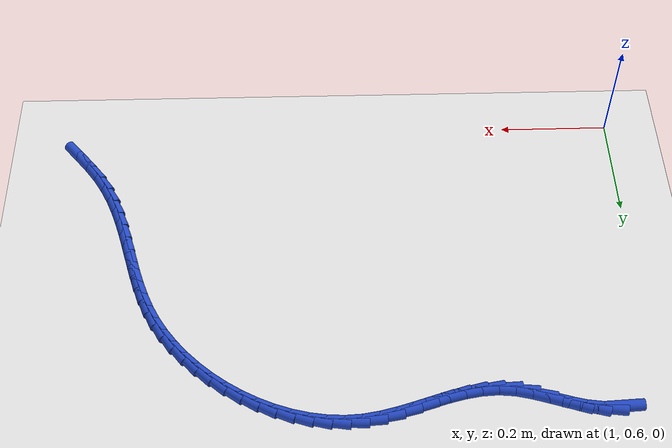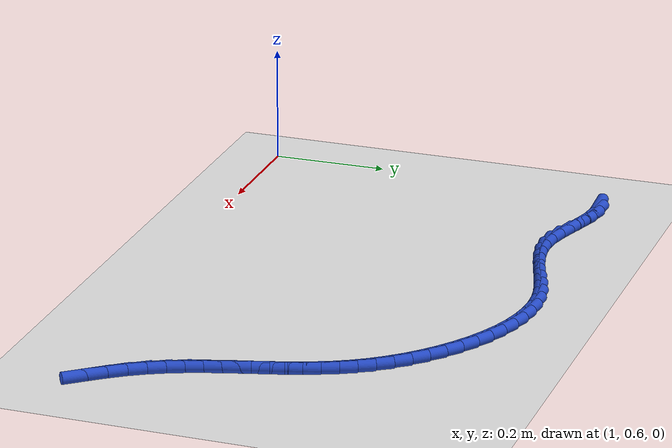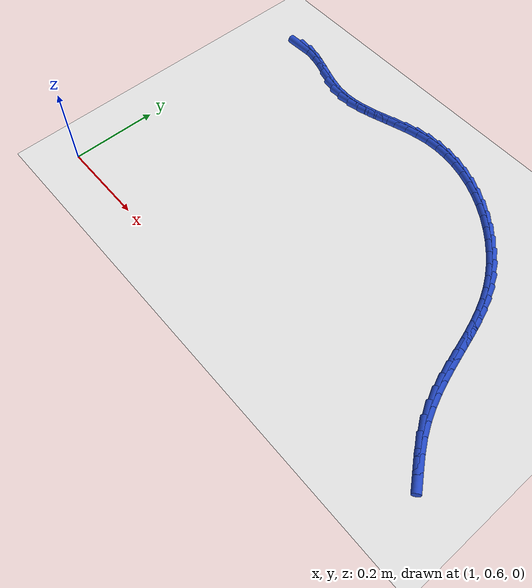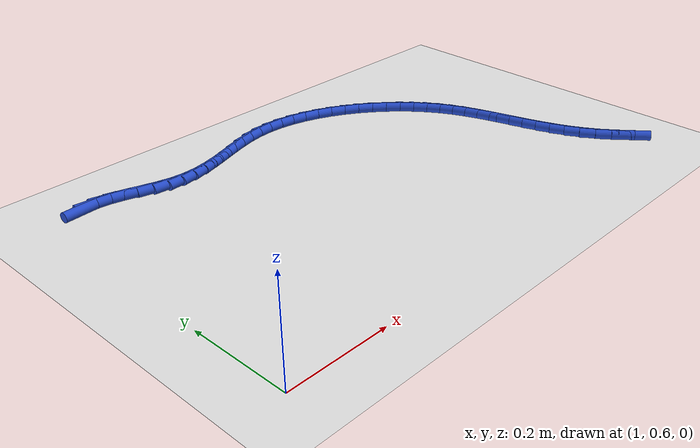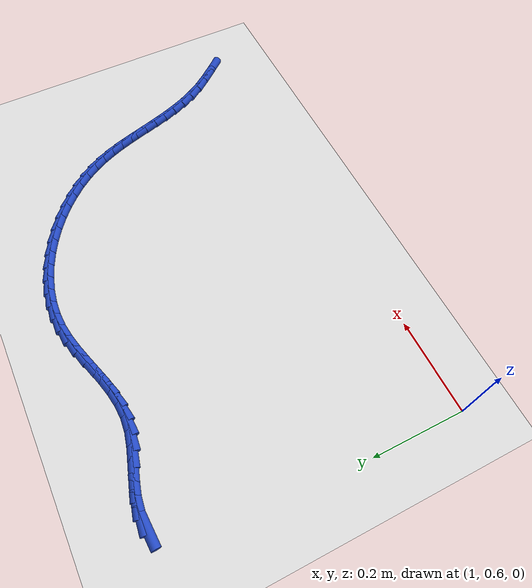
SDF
<sdf version="1.6">
 <world name="default">
  <model name="ground_plane">
   <static>1</static>
   <link name="link">
    <collision name="collision">
     <geometry><plane><normal>0 0 1</normal><size>100 100</size></plane></geometry>
     <surface><friction><ode><mu>100</mu><mu2>50</mu2></ode></friction></surface>
    </collision>
    <visual name="visual">
     <cast_shadows>0</cast_shadows>
     <geometry><plane><normal>0 0 1</normal><size>100 100</size></plane></geometry>
     <material>
      <script><uri>file://media/materials/scripts/gazebo.material</uri><name>Gazebo/WhiteGlow</name></script>
     </material>
    </visual>
   </link>
  </model>
  <model name="line">
   <link name="link_61">
    <pose>1.0715488757039915 1.217589665603973 0.01 0 1.57 0.05435777274545825</pose>
    <collision name="collision">
     <geometry><cylinder><radius>0.01</radius><length>0.08</length></cylinder></geometry>
    </collision>
    <visual name="visual">
     <material>
      <script><name>Gazebo/Blue</name><uri>file://media/materials/scripts/gazebo.material</uri></script>
     </material>
     <geometry><cylinder><radius>0.01</radius><length>0.08</length></cylinder></geometry>
    </visual>
   </link>
   <link name="link_62">
    <pose>1.0986426525846236 1.2190638752387835 0.01 0 1.57 -0.13552404900785117</pose>
    <collision name="collision">
     <geometry><cylinder><radius>0.01</radius><length>0.08</length></cylinder></geometry>
    </collision>
    <visual name="visual">
     <material>
      <script><name>Gazebo/Blue</name><uri>file://media/materials/scripts/gazebo.material</uri></script>
     </material>
     <geometry><cylinder><radius>0.01</radius><length>0.08</length></cylinder></geometry>
    </visual>
   </link>
   <link name="link_63">
    <pose>1.1262008687773615 1.2153060395453452 0.01 0 1.57 -0.25827537090885283</pose>
    <collision name="collision">
     <geometry><cylinder><radius>0.01</radius><length>0.08</length></cylinder></geometry>
    </collision>
    <visual name="visual">
     <material>
      <script><name>Gazebo/Blue</name><uri>file://media/materials/scripts/gazebo.material</uri></script>
     </material>
     <geometry><cylinder><radius>0.01</radius><length>0.08</length></cylinder></geometry>
    </visual>
   </link>
   <link name="link_64">
    <pose>1.1541304150347456 1.2079277318319839 0.01 0 1.57 -0.31144655986879355</pose>
    <collision name="collision">
     <geometry><cylinder><radius>0.01</radius><length>0.08</length></cylinder></geometry>
    </collision>
    <visual name="visual">
     <material>
      <script><name>Gazebo/Blue</name><uri>file://media/materials/scripts/gazebo.material</uri></script>
     </material>
     <geometry><cylinder><radius>0.01</radius><length>0.08</length></cylinder></geometry>
    </visual>
   </link>
   <link name="link_65">
    <pose>1.1823074308834507 1.1988568956931442 0.01 0 1.57 -0.3026104360789553</pose>
    <collision name="collision">
     <geometry><cylinder><radius>0.01</radius><length>0.08</length></cylinder></geometry>
    </collision>
    <visual name="visual">
     <material>
      <script><name>Gazebo/Blue</name><uri>file://media/materials/scripts/gazebo.material</uri></script>
     </material>
     <geometry><cylinder><radius>0.01</radius><length>0.08</length></cylinder></geometry>
    </visual>
   </link>
   <link name="link_66">
    <pose>1.2106080558501522 1.190021474723272 0.01 0 1.57 -0.23153092995129998</pose>
    <collision name="collision">
     <geometry><cylinder><radius>0.01</radius><length>0.08</length></cylinder></geometry>
    </collision>
    <visual name="visual">
     <material>
      <script><name>Gazebo/Blue</name><uri>file://media/materials/scripts/gazebo.material</uri></script>
     </material>
     <geometry><cylinder><radius>0.01</radius><length>0.08</length></cylinder></geometry>
    </visual>
   </link>
   <link name="link_67">
    <pose>1.2389084294615245 1.183349412516813 0.01 0 1.57 -0.09519659210859714</pose>
    <collision name="collision">
     <geometry><cylinder><radius>0.01</radius><length>0.08</length></cylinder></geometry>
    </collision>
    <visual name="visual">
     <material>
      <script><name>Gazebo/Blue</name><uri>file://media/materials/scripts/gazebo.material</uri></script>
     </material>
     <geometry><cylinder><radius>0.01</radius><length>0.08</length></cylinder></geometry>
    </visual>
   </link>
   <link name="link_68">
    <pose>1.2670918527298065 1.180658312485066 0.01 0 1.57 0.05476848052000872</pose>
    <collision name="collision">
     <geometry><cylinder><radius>0.01</radius><length>0.08</length></cylinder></geometry>
    </collision>
    <visual name="visual">
     <material>
      <script><name>Gazebo/Blue</name><uri>file://media/materials/scripts/gazebo.material</uri></script>
     </material>
     <geometry><cylinder><radius>0.01</radius><length>0.08</length></cylinder></geometry>
    </visual>
   </link>
   <link name="link_69">
    <pose>1.295143498310333 1.1821961964691683 0.01 0 1.57 0.1715222598980427</pose>
    <collision name="collision">
     <geometry><cylinder><radius>0.01</radius><length>0.08</length></cylinder></geometry>
    </collision>
    <visual name="visual">
     <material>
      <script><name>Gazebo/Blue</name><uri>file://media/materials/scripts/gazebo.material</uri></script>
     </material>
     <geometry><cylinder><radius>0.01</radius><length>0.08</length></cylinder></geometry>
    </visual>
   </link>
   <link name="link_70">
    <pose>1.3231243416039968 1.1870431598021762 0.01 0 1.57 0.25220375406498796</pose>
    <collision name="collision">
     <geometry><cylinder><radius>0.01</radius><length>0.08</length></cylinder></geometry>
    </collision>
    <visual name="visual">
     <material>
      <script><name>Gazebo/Blue</name><uri>file://media/materials/scripts/gazebo.material</uri></script>
     </material>
     <geometry><cylinder><radius>0.01</radius><length>0.08</length></cylinder></geometry>
    </visual>
   </link>
   <link name="link_71">
    <pose>1.3510971625064938 1.1942514951656618 0.01 0 1.57 0.2984379741879921</pose>
    <collision name="collision">
     <geometry><cylinder><radius>0.01</radius><length>0.08</length></cylinder></geometry>
    </collision>
    <visual name="visual">
     <material>
      <script><name>Gazebo/Blue</name><uri>file://media/materials/scripts/gazebo.material</uri></script>
     </material>
     <geometry><cylinder><radius>0.01</radius><length>0.08</length></cylinder></geometry>
    </visual>
   </link>
   <link name="link_72">
    <pose>1.3791247409135214 1.202873495241198 0.01 0 1.57 0.3123281187690076</pose>
    <collision name="collision">
     <geometry><cylinder><radius>0.01</radius><length>0.08</length></cylinder></geometry>
    </collision>
    <visual name="visual">
     <material>
      <script><name>Gazebo/Blue</name><uri>file://media/materials/scripts/gazebo.material</uri></script>
     </material>
     <geometry><cylinder><radius>0.01</radius><length>0.08</length></cylinder></geometry>
    </visual>
   </link>
   <link name="link_73">
    <pose>1.4072698567207762 1.2119614527103575 0.01 0 1.57 0.29496978924033357</pose>
    <collision name="collision">
     <geometry><cylinder><radius>0.01</radius><length>0.08</length></cylinder></geometry>
    </collision>
    <visual name="visual">
     <material>
      <script><name>Gazebo/Blue</name><uri>file://media/materials/scripts/gazebo.material</uri></script>
     </material>
     <geometry><cylinder><radius>0.01</radius><length>0.08</length></cylinder></geometry>
    </visual>
   </link>
   <link name="link_74">
    <pose>1.435595289823955 1.2205676602547129 0.01 0 1.57 0.2461188019172089</pose>
    <collision name="collision">
     <geometry><cylinder><radius>0.01</radius><length>0.08</length></cylinder></geometry>
    </collision>
    <visual name="visual">
     <material>
      <script><name>Gazebo/Blue</name><uri>file://media/materials/scripts/gazebo.material</uri></script>
     </material>
     <geometry><cylinder><radius>0.01</radius><length>0.08</length></cylinder></geometry>
    </visual>
   </link>
   <link name="link_75">
    <pose>1.4641638201187548 1.2277444105558368 0.01 0 1.57 0.16471680628258603</pose>
    <collision name="collision">
     <geometry><cylinder><radius>0.01</radius><length>0.08</length></cylinder></geometry>
    </collision>
    <visual name="visual">
     <material>
      <script><name>Gazebo/Blue</name><uri>file://media/materials/scripts/gazebo.material</uri></script>
     </material>
     <geometry><cylinder><radius>0.01</radius><length>0.08</length></cylinder></geometry>
    </visual>
   </link>
   <link name="link_76">
    <pose>1.4930382275008716 1.232543996295302 0.01 0 1.57 0.055420036147573924</pose>
    <collision name="collision">
     <geometry><cylinder><radius>0.01</radius><length>0.08</length></cylinder></geometry>
    </collision>
    <visual name="visual">
     <material>
      <script><name>Gazebo/Blue</name><uri>file://media/materials/scripts/gazebo.material</uri></script>
     </material>
     <geometry><cylinder><radius>0.01</radius><length>0.08</length></cylinder></geometry>
    </visual>
   </link>
   <link name="link_77">
    <pose>1.522247186551331 1.234164417177817 0.01 0 1.57 -0.05451754885380656</pose>
    <collision name="collision">
     <geometry><cylinder><radius>0.01</radius><length>0.08</length></cylinder></geometry>
    </collision>
    <visual name="visual">
     <material>
      <script><name>Gazebo/Blue</name><uri>file://media/materials/scripts/gazebo.material</uri></script>
     </material>
     <geometry><cylinder><radius>0.01</radius><length>0.08</length></cylinder></geometry>
    </visual>
   </link>
   <link name="link_78">
    <pose>1.551642274660476 1.232560279457777 0.01 0 1.57 -0.15630404062112882</pose>
    <collision name="collision">
     <geometry><cylinder><radius>0.01</radius><length>0.08</length></cylinder></geometry>
    </collision>
    <visual name="visual">
     <material>
      <script><name>Gazebo/Blue</name><uri>file://media/materials/scripts/gazebo.material</uri></script>
     </material>
     <geometry><cylinder><radius>0.01</radius><length>0.08</length></cylinder></geometry>
    </visual>
   </link>
   <link name="link_79">
    <pose>1.5810177643688932 1.2279310110295296 0.01 0 1.57 -0.25037340522576756</pose>
    <collision name="collision">
     <geometry><cylinder><radius>0.01</radius><length>0.08</length></cylinder></geometry>
    </collision>
    <visual name="visual">
     <material>
      <script><name>Gazebo/Blue</name><uri>file://media/materials/scripts/gazebo.material</uri></script>
     </material>
     <geometry><cylinder><radius>0.01</radius><length>0.08</length></cylinder></geometry>
    </visual>
   </link>
   <link name="link_80">
    <pose>1.6101678991406816 1.2204761640099528 0.01 0 1.57 -0.33758079616620257</pose>
    <collision name="collision">
     <geometry><cylinder><radius>0.01</radius><length>0.08</length></cylinder></geometry>
    </collision>
    <visual name="visual">
     <material>
      <script><name>Gazebo/Blue</name><uri>file://media/materials/scripts/gazebo.material</uri></script>
     </material>
     <geometry><cylinder><radius>0.01</radius><length>0.08</length></cylinder></geometry>
    </visual>
   </link>
   <link name="link_81">
    <pose>1.6388869224399418 1.2103952905159243 0.01 0 1.57 -0.4190087877565119</pose>
    <collision name="collision">
     <geometry><cylinder><radius>0.01</radius><length>0.08</length></cylinder></geometry>
    </collision>
    <visual name="visual">
     <material>
      <script><name>Gazebo/Blue</name><uri>file://media/materials/scripts/gazebo.material</uri></script>
     </material>
     <geometry><cylinder><radius>0.01</radius><length>0.08</length></cylinder></geometry>
    </visual>
   </link>
   <link name="link_82">
    <pose>1.6669690777307726 1.1978879426643223 0.01 0 1.57 -0.4958413967536082</pose>
    <collision name="collision">
     <geometry><cylinder><radius>0.01</radius><length>0.08</length></cylinder></geometry>
    </collision>
    <visual name="visual">
     <material>
      <script><name>Gazebo/Blue</name><uri>file://media/materials/scripts/gazebo.material</uri></script>
     </material>
     <geometry><cylinder><radius>0.01</radius><length>0.08</length></cylinder></geometry>
    </visual>
   </link>
   <link name="link_83">
    <pose>1.694208608477274 1.1831536725720244 0.01 0 1.57 -0.5692943504536877</pose>
    <collision name="collision">
     <geometry><cylinder><radius>0.01</radius><length>0.08</length></cylinder></geometry>
    </collision>
    <visual name="visual">
     <material>
      <script><name>Gazebo/Blue</name><uri>file://media/materials/scripts/gazebo.material</uri></script>
     </material>
     <geometry><cylinder><radius>0.01</radius><length>0.08</length></cylinder></geometry>
    </visual>
   </link>
   <link name="link_84">
    <pose>1.7203997581435455 1.166392032355909 0.01 0 1.57 -0.6405869344127946</pose>
    <collision name="collision">
     <geometry><cylinder><radius>0.01</radius><length>0.08</length></cylinder></geometry>
    </collision>
    <visual name="visual">
     <material>
      <script><name>Gazebo/Blue</name><uri>file://media/materials/scripts/gazebo.material</uri></script>
     </material>
     <geometry><cylinder><radius>0.01</radius><length>0.08</length></cylinder></geometry>
    </visual>
   </link>
   <link name="link_85">
    <pose>1.7453367701936862 1.1478025741328541 0.01 0 1.57 -0.7109415848849366</pose>
    <collision name="collision">
     <geometry><cylinder><radius>0.01</radius><length>0.08</length></cylinder></geometry>
    </collision>
    <visual name="visual">
     <material>
      <script><name>Gazebo/Blue</name><uri>file://media/materials/scripts/gazebo.material</uri></script>
     </material>
     <geometry><cylinder><radius>0.01</radius><length>0.08</length></cylinder></geometry>
    </visual>
   </link>
   <link name="link_86">
    <pose>1.7688138880917956 1.1275848500197365 0.01 0 1.57 -0.7816007293002237</pose>
    <collision name="collision">
     <geometry><cylinder><radius>0.01</radius><length>0.08</length></cylinder></geometry>
    </collision>
    <visual name="visual">
     <material>
      <script><name>Gazebo/Blue</name><uri>file://media/materials/scripts/gazebo.material</uri></script>
     </material>
     <geometry><cylinder><radius>0.01</radius><length>0.08</length></cylinder></geometry>
    </visual>
   </link>
   <link name="link_87">
    <pose>1.7906253553019735 1.1059384121334355 0.01 0 1.57 -0.8538533206073547</pose>
    <collision name="collision">
     <geometry><cylinder><radius>0.01</radius><length>0.08</length></cylinder></geometry>
    </collision>
    <visual name="visual">
     <material>
      <script><name>Gazebo/Blue</name><uri>file://media/materials/scripts/gazebo.material</uri></script>
     </material>
     <geometry><cylinder><radius>0.01</radius><length>0.08</length></cylinder></geometry>
    </visual>
   </link>
   <link name="link_88">
    <pose>1.8105654152883193 1.0830628125908286 0.01 0 1.57 -0.9290648239568746</pose>
    <collision name="collision">
     <geometry><cylinder><radius>0.01</radius><length>0.08</length></cylinder></geometry>
    </collision>
    <visual name="visual">
     <material>
      <script><name>Gazebo/Blue</name><uri>file://media/materials/scripts/gazebo.material</uri></script>
     </material>
     <geometry><cylinder><radius>0.01</radius><length>0.08</length></cylinder></geometry>
    </visual>
   </link>
   <link name="link_89">
    <pose>1.8284283115149322 1.0591576035087937 0.01 0 1.57 -1.0087002301194197</pose>
    <collision name="collision">
     <geometry><cylinder><radius>0.01</radius><length>0.08</length></cylinder></geometry>
    </collision>
    <visual name="visual">
     <material>
      <script><name>Gazebo/Blue</name><uri>file://media/materials/scripts/gazebo.material</uri></script>
     </material>
     <geometry><cylinder><radius>0.01</radius><length>0.08</length></cylinder></geometry>
    </visual>
   </link>
   <link name="link_90">
    <pose>1.8440084108802723 1.0344223157389907 0.01 0 1.57 -1.090237851928137</pose>
    <collision name="collision">
     <geometry><cylinder><radius>0.01</radius><length>0.08</length></cylinder></geometry>
    </collision>
    <visual name="visual">
     <material>
      <script><name>Gazebo/Blue</name><uri>file://media/materials/scripts/gazebo.material</uri></script>
     </material>
     <geometry><cylinder><radius>0.01</radius><length>0.08</length></cylinder></geometry>
    </visual>
   </link>
   <link name="link_91">
    <pose>1.8572451830335555 1.0090314818937722 0.01 0 1.57 -1.161386059143983</pose>
    <collision name="collision">
     <geometry><cylinder><radius>0.01</radius><length>0.08</length></cylinder></geometry>
    </collision>
    <visual name="visual">
     <material>
      <script><name>Gazebo/Blue</name><uri>file://media/materials/scripts/gazebo.material</uri></script>
     </material>
     <geometry><cylinder><radius>0.01</radius><length>0.08</length></cylinder></geometry>
    </visual>
   </link>
   <link name="link_92">
    <pose>1.86850356713332 0.9830863348819683 0.01 0 1.57 -1.218075052008287</pose>
    <collision name="collision">
     <geometry><cylinder><radius>0.01</radius><length>0.08</length></cylinder></geometry>
    </collision>
    <visual name="visual">
     <material>
      <script><name>Gazebo/Blue</name><uri>file://media/materials/scripts/gazebo.material</uri></script>
     </material>
     <geometry><cylinder><radius>0.01</radius><length>0.08</length></cylinder></geometry>
    </visual>
   </link>
   <link name="link_93">
    <pose>1.8782260822577068 0.9566747421773243 0.01 0 1.57 -1.2591878797849778</pose>
    <collision name="collision">
     <geometry><cylinder><radius>0.01</radius><length>0.08</length></cylinder></geometry>
    </collision>
    <visual name="visual">
     <material>
      <script><name>Gazebo/Blue</name><uri>file://media/materials/scripts/gazebo.material</uri></script>
     </material>
     <geometry><cylinder><radius>0.01</radius><length>0.08</length></cylinder></geometry>
    </visual>
   </link>
   <link name="link_94">
    <pose>1.886855247484858 0.9298845712535857 0.01 0 1.57 -1.2842905742192094</pose>
    <collision name="collision">
     <geometry><cylinder><radius>0.01</radius><length>0.08</length></cylinder></geometry>
    </collision>
    <visual name="visual">
     <material>
      <script><name>Gazebo/Blue</name><uri>file://media/materials/scripts/gazebo.material</uri></script>
     </material>
     <geometry><cylinder><radius>0.01</radius><length>0.08</length></cylinder></geometry>
    </visual>
   </link>
   <link name="link_95">
    <pose>1.8948335818929154 0.9028036895844987 0.01 0 1.57 -1.2933551120784117</pose>
    <collision name="collision">
     <geometry><cylinder><radius>0.01</radius><length>0.08</length></cylinder></geometry>
    </collision>
    <visual name="visual">
     <material>
      <script><name>Gazebo/Blue</name><uri>file://media/materials/scripts/gazebo.material</uri></script>
     </material>
     <geometry><cylinder><radius>0.01</radius><length>0.08</length></cylinder></geometry>
    </visual>
   </link>
   <link name="link_96">
    <pose>1.90260360456002 0.8755199646438089 0.01 0 1.57 -1.2865669378808524</pose>
    <collision name="collision">
     <geometry><cylinder><radius>0.01</radius><length>0.08</length></cylinder></geometry>
    </collision>
    <visual name="visual">
     <material>
      <script><name>Gazebo/Blue</name><uri>file://media/materials/scripts/gazebo.material</uri></script>
     </material>
     <geometry><cylinder><radius>0.01</radius><length>0.08</length></cylinder></geometry>
    </visual>
   </link>
   <link name="link_97">
    <pose>1.9106078345643152 0.8481212639052615 0.01 0 1.57 -1.264248694894531</pose>
    <collision name="collision">
     <geometry><cylinder><radius>0.01</radius><length>0.08</length></cylinder></geometry>
    </collision>
    <visual name="visual">
     <material>
      <script><name>Gazebo/Blue</name><uri>file://media/materials/scripts/gazebo.material</uri></script>
     </material>
     <geometry><cylinder><radius>0.01</radius><length>0.08</length></cylinder></geometry>
    </visual>
   </link>
   <link name="link_98">
    <pose>1.919288790983942 0.820695454842603 0.01 0 1.57 -1.2268985912076065</pose>
    <collision name="collision">
     <geometry><cylinder><radius>0.01</radius><length>0.08</length></cylinder></geometry>
    </collision>
    <visual name="visual">
     <material>
      <script><name>Gazebo/Blue</name><uri>file://media/materials/scripts/gazebo.material</uri></script>
     </material>
     <geometry><cylinder><radius>0.01</radius><length>0.08</length></cylinder></geometry>
    </visual>
   </link>
   <link name="link_99">
    <pose>1.929088992897042 0.793330404929578 0.01 0 1.57 -1.1753232127968893</pose>
    <collision name="collision">
     <geometry><cylinder><radius>0.01</radius><length>0.08</length></cylinder></geometry>
    </collision>
    <visual name="visual">
     <material>
      <script><name>Gazebo/Blue</name><uri>file://media/materials/scripts/gazebo.material</uri></script>
     </material>
     <geometry><cylinder><radius>0.01</radius><length>0.08</length></cylinder></geometry>
    </visual>
   </link>
   <link name="link_100">
    <pose>1.9404509593817576 0.7661139816399333 0.01 0 1.57 -1.110823782565839</pose>
    <collision name="collision">
     <geometry><cylinder><radius>0.01</radius><length>0.08</length></cylinder></geometry>
    </collision>
    <visual name="visual">
     <material>
      <script><name>Gazebo/Blue</name><uri>file://media/materials/scripts/gazebo.material</uri></script>
     </material>
     <geometry><cylinder><radius>0.01</radius><length>0.08</length></cylinder></geometry>
    </visual>
   </link>
   <link name="link_101">
    <pose>1.9538172095162305 0.7391340524474141 0.01 0 1.57 -1.0353649078522387</pose>
    <collision name="collision">
     <geometry><cylinder><radius>0.01</radius><length>0.08</length></cylinder></geometry>
    </collision>
    <visual name="visual">
     <material>
      <script><name>Gazebo/Blue</name><uri>file://media/materials/scripts/gazebo.material</uri></script>
     </material>
     <geometry><cylinder><radius>0.01</radius><length>0.08</length></cylinder></geometry>
    </visual>
   </link>
   <link name="link_102">
    <pose>1.9696302623786024 0.712478484825766 0.01 0 1.57 -0.9548030259297775</pose>
    <collision name="collision">
     <geometry><cylinder><radius>0.01</radius><length>0.08</length></cylinder></geometry>
    </collision>
    <visual name="visual">
     <material>
      <script><name>Gazebo/Blue</name><uri>file://media/materials/scripts/gazebo.material</uri></script>
     </material>
     <geometry><cylinder><radius>0.01</radius><length>0.08</length></cylinder></geometry>
    </visual>
   </link>
   <link name="link_103">
    <pose>1.988211954815598 0.686228612828757 0.01 0 1.57 -0.9001890619961812</pose>
    <collision name="collision">
     <geometry><cylinder><radius>0.01</radius><length>0.08</length></cylinder></geometry>
    </collision>
    <visual name="visual">
     <material>
      <script><name>Gazebo/Blue</name><uri>file://media/materials/scripts/gazebo.material</uri></script>
     </material>
     <geometry><cylinder><radius>0.01</radius><length>0.08</length></cylinder></geometry>
    </visual>
   </link>
   <link name="link_104">
    <pose>2.008699043298263 0.6604016133619867 0.01 0 1.57 -0.8837511378509665</pose>
    <collision name="collision">
     <geometry><cylinder><radius>0.01</radius><length>0.08</length></cylinder></geometry>
    </collision>
    <visual name="visual">
     <material>
      <script><name>Gazebo/Blue</name><uri>file://media/materials/scripts/gazebo.material</uri></script>
     </material>
     <geometry><cylinder><radius>0.01</radius><length>0.08</length></cylinder></geometry>
    </visual>
   </link>
  </model>
 </world>
</sdf>
